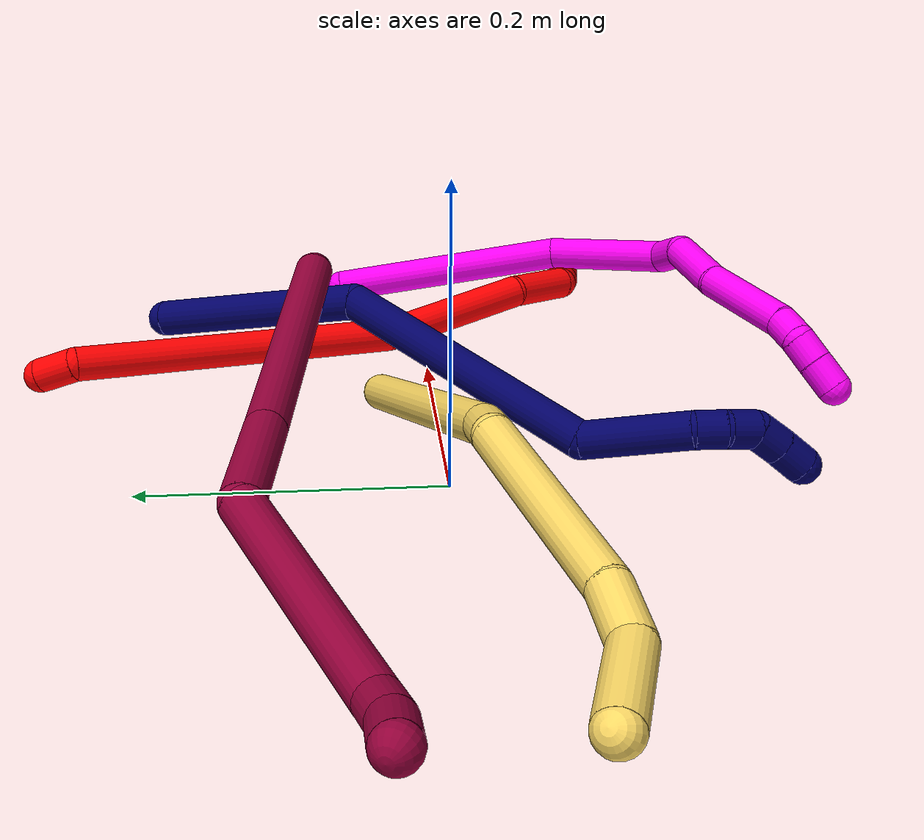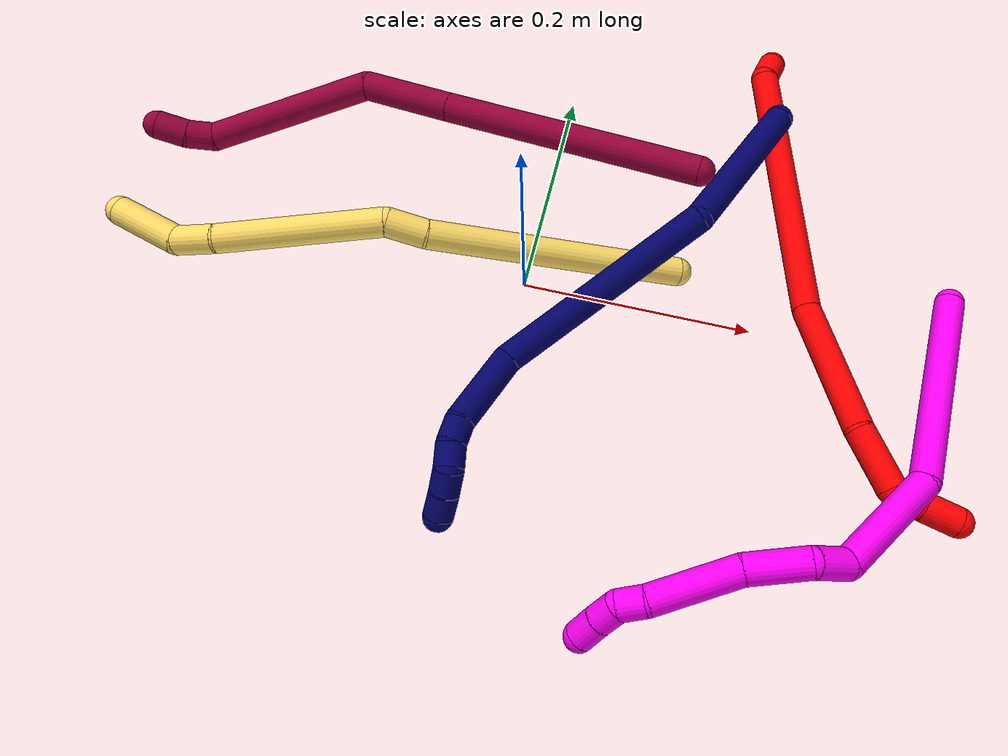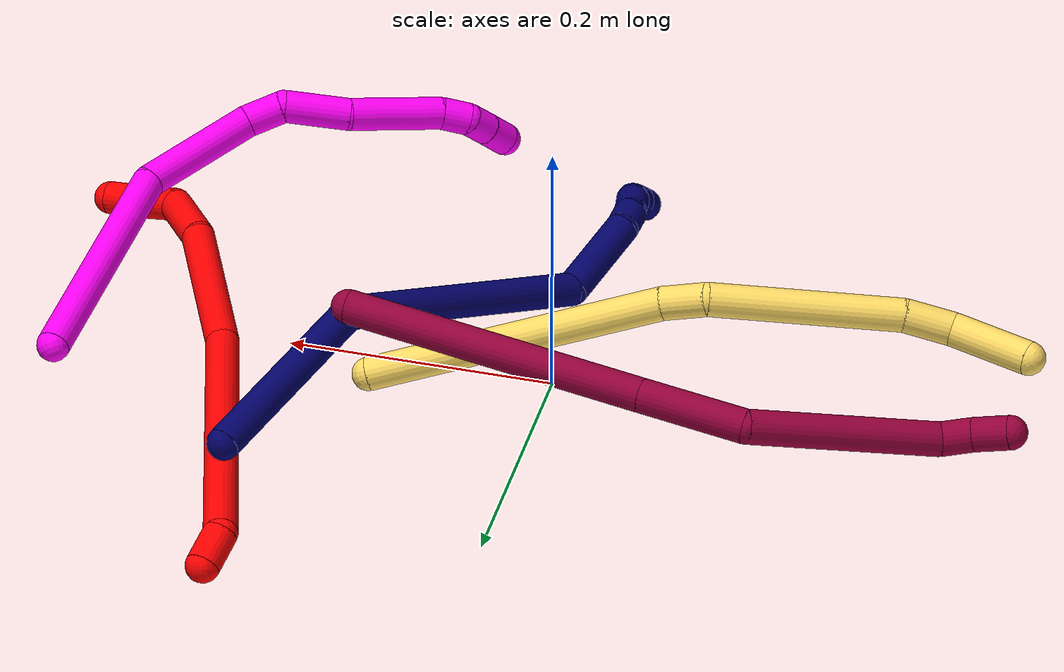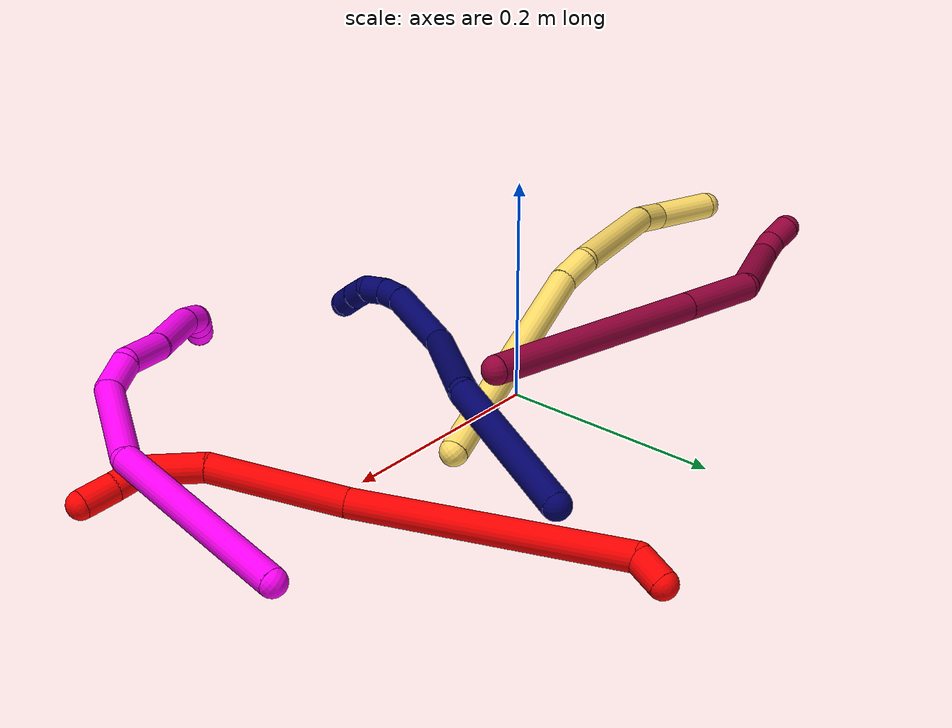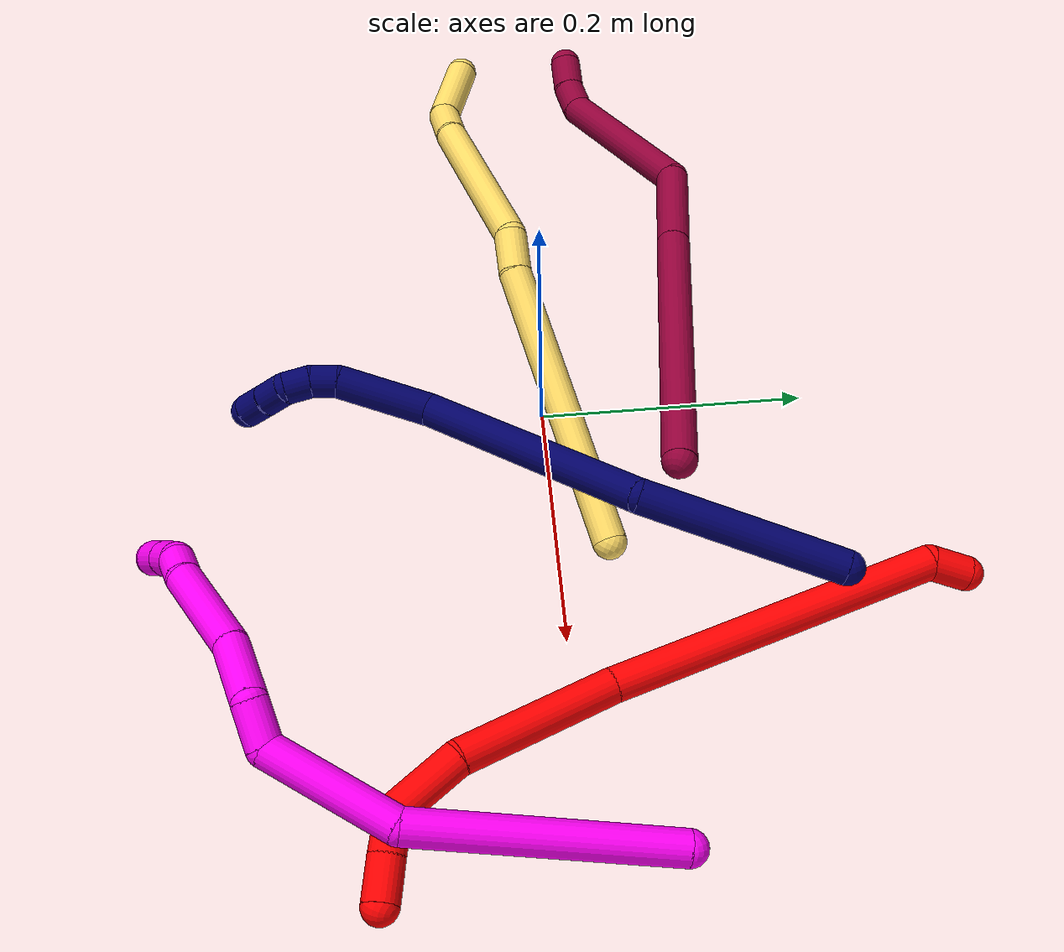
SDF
<sdf version="1.7">
 <world name="default">
  <model name="2">
   <static>0</static>
   <link name="2">
    <collision name="collision-cylinder-e_1_1_4">
     <pose>0.007827 -0.006777 0.009974 0.596817 0.575712 0.181643</pose>
     <geometry><cylinder><radius>0.0125</radius><length>0.028752</length></cylinder></geometry>
     <surface>
      <friction><ode><mu>1.16</mu><mu2>1.16</mu2><slip1>0</slip1><slip2>0</slip2></ode></friction>
      <contact><ode><kp>1e+06</kp><kd>1</kd><max_vel>0</max_vel><min_depth>0.001</min_depth></ode></contact>
     </surface>
    </collision>
    <visual name="visual-cylinder-e_1_1_4">
     <pose>0.007827 -0.006777 0.009974 0.596817 0.575712 0.181643</pose>
     <geometry><cylinder><radius>0.0125</radius><length>0.028752</length></cylinder></geometry>
     <material><ambient>1 0 0 1</ambient></material>
    </visual>
    <collision name="collision-cylinder-e_2_4_5">
     <pose>0.027157 -0.116205 0.082884 1.0208 0.095246 0.053354</pose>
     <geometry><cylinder><radius>0.0125</radius><length>0.241914</length></cylinder></geometry>
     <surface>
      <friction><ode><mu>1.16</mu><mu2>1.16</mu2><slip1>0</slip1><slip2>0</slip2></ode></friction>
      <contact><ode><kp>1e+06</kp><kd>1</kd><max_vel>0</max_vel><min_depth>0.001</min_depth></ode></contact>
     </surface>
    </collision>
    <visual name="visual-cylinder-e_2_4_5">
     <pose>0.027157 -0.116205 0.082884 1.0208 0.095246 0.053354</pose>
     <geometry><cylinder><radius>0.0125</radius><length>0.241914</length></cylinder></geometry>
     <material><ambient>1 0 0 1</ambient></material>
    </visual>
    <collision name="collision-cylinder-e_3_5_6">
     <pose>0.052136 -0.272971 0.165832 1.21657 0.229455 0.160147</pose>
     <geometry><cylinder><radius>0.0125</radius><length>0.118497</length></cylinder></geometry>
     <surface>
      <friction><ode><mu>1.16</mu><mu2>1.16</mu2><slip1>0</slip1><slip2>0</slip2></ode></friction>
      <contact><ode><kp>1e+06</kp><kd>1</kd><max_vel>0</max_vel><min_depth>0.001</min_depth></ode></contact>
     </surface>
    </collision>
    <visual name="visual-cylinder-e_3_5_6">
     <pose>0.052136 -0.272971 0.165832 1.21657 0.229455 0.160147</pose>
     <geometry><cylinder><radius>0.0125</radius><length>0.118497</length></cylinder></geometry>
     <material><ambient>1 0 0 1</ambient></material>
    </visual>
    <collision name="collision-cylinder-e_4_6_7">
     <pose>0.064855 -0.352868 0.191812 1.34338 -0.028588 -0.022728</pose>
     <geometry><cylinder><radius>0.0125</radius><length>0.052951</length></cylinder></geometry>
     <surface>
      <friction><ode><mu>1.16</mu><mu2>1.16</mu2><slip1>0</slip1><slip2>0</slip2></ode></friction>
      <contact><ode><kp>1e+06</kp><kd>1</kd><max_vel>0</max_vel><min_depth>0.001</min_depth></ode></contact>
     </surface>
    </collision>
    <visual name="visual-cylinder-e_4_6_7">
     <pose>0.064855 -0.352868 0.191812 1.34338 -0.028588 -0.022728</pose>
     <geometry><cylinder><radius>0.0125</radius><length>0.052951</length></cylinder></geometry>
     <material><ambient>1 0 0 1</ambient></material>
    </visual>
    <collision name="collision-cylinder-e_5_7_8">
     <pose>0.059578 -0.390214 0.19252 1.99757 -0.341877 -0.52393</pose>
     <geometry><cylinder><radius>0.0125</radius><length>0.026966</length></cylinder></geometry>
     <surface>
      <friction><ode><mu>1.16</mu><mu2>1.16</mu2><slip1>0</slip1><slip2>0</slip2></ode></friction>
      <contact><ode><kp>1e+06</kp><kd>1</kd><max_vel>0</max_vel><min_depth>0.001</min_depth></ode></contact>
     </surface>
    </collision>
    <visual name="visual-cylinder-e_5_7_8">
     <pose>0.059578 -0.390214 0.19252 1.99757 -0.341877 -0.52393</pose>
     <geometry><cylinder><radius>0.0125</radius><length>0.026966</length></cylinder></geometry>
     <material><ambient>1 0 0 1</ambient></material>
    </visual>
    <collision name="collision-cylinder-e_6_8_2">
     <pose>0.050822 -0.414843 0.180164 2.0685 -0.277488 -0.46123</pose>
     <geometry><cylinder><radius>0.0125</radius><length>0.03092</length></cylinder></geometry>
     <surface>
      <friction><ode><mu>1.16</mu><mu2>1.16</mu2><slip1>0</slip1><slip2>0</slip2></ode></friction>
      <contact><ode><kp>1e+06</kp><kd>1</kd><max_vel>0</max_vel><min_depth>0.001</min_depth></ode></contact>
     </surface>
    </collision>
    <visual name="visual-cylinder-e_6_8_2">
     <pose>0.050822 -0.414843 0.180164 2.0685 -0.277488 -0.46123</pose>
     <geometry><cylinder><radius>0.0125</radius><length>0.03092</length></cylinder></geometry>
     <material><ambient>1 0 0 1</ambient></material>
    </visual>
    <collision name="collision-sphere-2">
     <pose>0.046587 -0.427907 0.173065 0 -0 0</pose>
     <geometry><sphere><radius>0.0125</radius></sphere></geometry>
     <surface>
      <friction><ode><mu>1.16</mu><mu2>1.16</mu2><slip1>0</slip1><slip2>0</slip2></ode></friction>
      <contact><ode><kp>1e+06</kp><kd>1</kd><max_vel>0</max_vel><min_depth>0.001</min_depth></ode></contact>
     </surface>
    </collision>
    <visual name="visual-sphere-2">
     <pose>0.046587 -0.427907 0.173065 0 -0 0</pose>
     <geometry><sphere><radius>0.0125</radius></sphere></geometry>
     <material><ambient>1 0 0 1</ambient></material>
    </visual>
    <collision name="collision-sphere-4">
     <pose>0.015653 -0.013554 0.019948 0 -0 0</pose>
     <geometry><sphere><radius>0.0125</radius></sphere></geometry>
     <surface>
      <friction><ode><mu>1.16</mu><mu2>1.16</mu2><slip1>0</slip1><slip2>0</slip2></ode></friction>
      <contact><ode><kp>1e+06</kp><kd>1</kd><max_vel>0</max_vel><min_depth>0.001</min_depth></ode></contact>
     </surface>
    </collision>
    <visual name="visual-sphere-4">
     <pose>0.015653 -0.013554 0.019948 0 -0 0</pose>
     <geometry><sphere><radius>0.0125</radius></sphere></geometry>
     <material><ambient>1 0 0 1</ambient></material>
    </visual>
    <collision name="collision-sphere-1">
     <geometry><sphere><radius>0.0125</radius></sphere></geometry>
     <surface>
      <friction><ode><mu>1.16</mu><mu2>1.16</mu2><slip1>0</slip1><slip2>0</slip2></ode></friction>
      <contact><ode><kp>1e+06</kp><kd>1</kd><max_vel>0</max_vel><min_depth>0.001</min_depth></ode></contact>
     </surface>
    </collision>
    <visual name="visual-sphere-1">
     <geometry><sphere><radius>0.0125</radius></sphere></geometry>
     <material><ambient>1 0 0 1</ambient></material>
    </visual>
    <collision name="collision-sphere-8">
     <pose>0.055058 -0.401778 0.187262 0 -0 0</pose>
     <geometry><sphere><radius>0.0125</radius></sphere></geometry>
     <surface>
      <friction><ode><mu>1.16</mu><mu2>1.16</mu2><slip1>0</slip1><slip2>0</slip2></ode></friction>
      <contact><ode><kp>1e+06</kp><kd>1</kd><max_vel>0</max_vel><min_depth>0.001</min_depth></ode></contact>
     </surface>
    </collision>
    <visual name="visual-sphere-8">
     <pose>0.055058 -0.401778 0.187262 0 -0 0</pose>
     <geometry><sphere><radius>0.0125</radius></sphere></geometry>
     <material><ambient>1 0 0 1</ambient></material>
    </visual>
    <collision name="collision-sphere-5">
     <pose>0.03866 -0.218857 0.14582 0 -0 0</pose>
     <geometry><sphere><radius>0.0125</radius></sphere></geometry>
     <surface>
      <friction><ode><mu>1.16</mu><mu2>1.16</mu2><slip1>0</slip1><slip2>0</slip2></ode></friction>
      <contact><ode><kp>1e+06</kp><kd>1</kd><max_vel>0</max_vel><min_depth>0.001</min_depth></ode></contact>
     </surface>
    </collision>
    <visual name="visual-sphere-5">
     <pose>0.03866 -0.218857 0.14582 0 -0 0</pose>
     <geometry><sphere><radius>0.0125</radius></sphere></geometry>
     <material><ambient>1 0 0 1</ambient></material>
    </visual>
    <collision name="collision-sphere-6">
     <pose>0.065612 -0.327084 0.185845 0 -0 0</pose>
     <geometry><sphere><radius>0.0125</radius></sphere></geometry>
     <surface>
      <friction><ode><mu>1.16</mu><mu2>1.16</mu2><slip1>0</slip1><slip2>0</slip2></ode></friction>
      <contact><ode><kp>1e+06</kp><kd>1</kd><max_vel>0</max_vel><min_depth>0.001</min_depth></ode></contact>
     </surface>
    </collision>
    <visual name="visual-sphere-6">
     <pose>0.065612 -0.327084 0.185845 0 -0 0</pose>
     <geometry><sphere><radius>0.0125</radius></sphere></geometry>
     <material><ambient>1 0 0 1</ambient></material>
    </visual>
    <collision name="collision-sphere-7">
     <pose>0.064098 -0.378651 0.197778 0 -0 0</pose>
     <geometry><sphere><radius>0.0125</radius></sphere></geometry>
     <surface>
      <friction><ode><mu>1.16</mu><mu2>1.16</mu2><slip1>0</slip1><slip2>0</slip2></ode></friction>
      <contact><ode><kp>1e+06</kp><kd>1</kd><max_vel>0</max_vel><min_depth>0.001</min_depth></ode></contact>
     </surface>
    </collision>
    <visual name="visual-sphere-7">
     <pose>0.064098 -0.378651 0.197778 0 -0 0</pose>
     <geometry><sphere><radius>0.0125</radius></sphere></geometry>
     <material><ambient>1 0 0 1</ambient></material>
    </visual>
    <inertial>
     <pose>0.039169 -0.205374 0.121814 0 -0 0</pose>
     <mass>0.5</mass>
     <inertia>
      <ixx>0.001429</ixx>
      <ixy>0</ixy>
      <ixz>0</ixz>
      <iyy>0.000733</iyy>
      <iyz>0</iyz>
      <izz>0.00103</izz>
     </inertia>
    </inertial>
   </link>
   <pose>0.178473 0.284062 0.012043 3.12868 -1.31276 -2.27677</pose>
  </model>
  <model name="5">
   <static>0</static>
   <link name="5">
    <collision name="collision-cylinder-e_1_1_4">
     <pose>-0.07071 0.047085 -0.072844 -2.56777 -0.683952 1.75737</pose>
     <geometry><cylinder><radius>0.0125</radius><length>0.223814</length></cylinder></geometry>
     <surface>
      <friction><ode><mu>1.16</mu><mu2>1.16</mu2><slip1>0</slip1><slip2>0</slip2></ode></friction>
      <contact><ode><kp>1e+06</kp><kd>1</kd><max_vel>0</max_vel><min_depth>0.001</min_depth></ode></contact>
     </surface>
    </collision>
    <visual name="visual-cylinder-e_1_1_4">
     <pose>-0.07071 0.047085 -0.072844 -2.56777 -0.683952 1.75737</pose>
     <geometry><cylinder><radius>0.0125</radius><length>0.223814</length></cylinder></geometry>
     <material><ambient>1 0.858824 0.4 1</ambient></material>
    </visual>
    <collision name="collision-cylinder-e_2_4_5">
     <pose>-0.152039 0.098346 -0.158352 -2.82302 -0.672564 2.28002</pose>
     <geometry><cylinder><radius>0.0125</radius><length>0.034091</length></cylinder></geometry>
     <surface>
      <friction><ode><mu>1.16</mu><mu2>1.16</mu2><slip1>0</slip1><slip2>0</slip2></ode></friction>
      <contact><ode><kp>1e+06</kp><kd>1</kd><max_vel>0</max_vel><min_depth>0.001</min_depth></ode></contact>
     </surface>
    </collision>
    <visual name="visual-cylinder-e_2_4_5">
     <pose>-0.152039 0.098346 -0.158352 -2.82302 -0.672564 2.28002</pose>
     <geometry><cylinder><radius>0.0125</radius><length>0.034091</length></cylinder></geometry>
     <material><ambient>1 0.858824 0.4 1</ambient></material>
    </visual>
    <collision name="collision-cylinder-e_3_5_6">
     <pose>-0.226417 0.118649 -0.199435 -2.62545 -1.09719 2.32622</pose>
     <geometry><cylinder><radius>0.0125</radius><length>0.14329</length></cylinder></geometry>
     <surface>
      <friction><ode><mu>1.16</mu><mu2>1.16</mu2><slip1>0</slip1><slip2>0</slip2></ode></friction>
      <contact><ode><kp>1e+06</kp><kd>1</kd><max_vel>0</max_vel><min_depth>0.001</min_depth></ode></contact>
     </surface>
    </collision>
    <visual name="visual-cylinder-e_3_5_6">
     <pose>-0.226417 0.118649 -0.199435 -2.62545 -1.09719 2.32622</pose>
     <geometry><cylinder><radius>0.0125</radius><length>0.14329</length></cylinder></geometry>
     <material><ambient>1 0.858824 0.4 1</ambient></material>
    </visual>
    <collision name="collision-cylinder-e_4_6_7">
     <pose>-0.307223 0.135331 -0.234986 -3.06397 -1.17353 3.02491</pose>
     <geometry><cylinder><radius>0.0125</radius><length>0.036975</length></cylinder></geometry>
     <surface>
      <friction><ode><mu>1.16</mu><mu2>1.16</mu2><slip1>0</slip1><slip2>0</slip2></ode></friction>
      <contact><ode><kp>1e+06</kp><kd>1</kd><max_vel>0</max_vel><min_depth>0.001</min_depth></ode></contact>
     </surface>
    </collision>
    <visual name="visual-cylinder-e_4_6_7">
     <pose>-0.307223 0.135331 -0.234986 -3.06397 -1.17353 3.02491</pose>
     <geometry><cylinder><radius>0.0125</radius><length>0.036975</length></cylinder></geometry>
     <material><ambient>1 0.858824 0.4 1</ambient></material>
    </visual>
    <collision name="collision-cylinder-e_5_7_2">
     <pose>-0.345152 0.130052 -0.264156 2.88283 -0.741559 -2.49567</pose>
     <geometry><cylinder><radius>0.0125</radius><length>0.06183</length></cylinder></geometry>
     <surface>
      <friction><ode><mu>1.16</mu><mu2>1.16</mu2><slip1>0</slip1><slip2>0</slip2></ode></friction>
      <contact><ode><kp>1e+06</kp><kd>1</kd><max_vel>0</max_vel><min_depth>0.001</min_depth></ode></contact>
     </surface>
    </collision>
    <visual name="visual-cylinder-e_5_7_2">
     <pose>-0.345152 0.130052 -0.264156 2.88283 -0.741559 -2.49567</pose>
     <geometry><cylinder><radius>0.0125</radius><length>0.06183</length></cylinder></geometry>
     <material><ambient>1 0.858824 0.4 1</ambient></material>
    </visual>
    <collision name="collision-sphere-2">
     <pose>-0.366033 0.124219 -0.286194 0 -0 0</pose>
     <geometry><sphere><radius>0.0125</radius></sphere></geometry>
     <surface>
      <friction><ode><mu>1.16</mu><mu2>1.16</mu2><slip1>0</slip1><slip2>0</slip2></ode></friction>
      <contact><ode><kp>1e+06</kp><kd>1</kd><max_vel>0</max_vel><min_depth>0.001</min_depth></ode></contact>
     </surface>
    </collision>
    <visual name="visual-sphere-2">
     <pose>-0.366033 0.124219 -0.286194 0 -0 0</pose>
     <geometry><sphere><radius>0.0125</radius></sphere></geometry>
     <material><ambient>1 0.858824 0.4 1</ambient></material>
    </visual>
    <collision name="collision-sphere-7">
     <pose>-0.324271 0.135886 -0.242118 0 -0 0</pose>
     <geometry><sphere><radius>0.0125</radius></sphere></geometry>
     <surface>
      <friction><ode><mu>1.16</mu><mu2>1.16</mu2><slip1>0</slip1><slip2>0</slip2></ode></friction>
      <contact><ode><kp>1e+06</kp><kd>1</kd><max_vel>0</max_vel><min_depth>0.001</min_depth></ode></contact>
     </surface>
    </collision>
    <visual name="visual-sphere-7">
     <pose>-0.324271 0.135886 -0.242118 0 -0 0</pose>
     <geometry><sphere><radius>0.0125</radius></sphere></geometry>
     <material><ambient>1 0.858824 0.4 1</ambient></material>
    </visual>
    <collision name="collision-sphere-6">
     <pose>-0.290175 0.134776 -0.227855 0 -0 0</pose>
     <geometry><sphere><radius>0.0125</radius></sphere></geometry>
     <surface>
      <friction><ode><mu>1.16</mu><mu2>1.16</mu2><slip1>0</slip1><slip2>0</slip2></ode></friction>
      <contact><ode><kp>1e+06</kp><kd>1</kd><max_vel>0</max_vel><min_depth>0.001</min_depth></ode></contact>
     </surface>
    </collision>
    <visual name="visual-sphere-6">
     <pose>-0.290175 0.134776 -0.227855 0 -0 0</pose>
     <geometry><sphere><radius>0.0125</radius></sphere></geometry>
     <material><ambient>1 0.858824 0.4 1</ambient></material>
    </visual>
    <collision name="collision-sphere-5">
     <pose>-0.162658 0.102522 -0.171014 0 -0 0</pose>
     <geometry><sphere><radius>0.0125</radius></sphere></geometry>
     <surface>
      <friction><ode><mu>1.16</mu><mu2>1.16</mu2><slip1>0</slip1><slip2>0</slip2></ode></friction>
      <contact><ode><kp>1e+06</kp><kd>1</kd><max_vel>0</max_vel><min_depth>0.001</min_depth></ode></contact>
     </surface>
    </collision>
    <visual name="visual-sphere-5">
     <pose>-0.162658 0.102522 -0.171014 0 -0 0</pose>
     <geometry><sphere><radius>0.0125</radius></sphere></geometry>
     <material><ambient>1 0.858824 0.4 1</ambient></material>
    </visual>
    <collision name="collision-sphere-1">
     <geometry><sphere><radius>0.0125</radius></sphere></geometry>
     <surface>
      <friction><ode><mu>1.16</mu><mu2>1.16</mu2><slip1>0</slip1><slip2>0</slip2></ode></friction>
      <contact><ode><kp>1e+06</kp><kd>1</kd><max_vel>0</max_vel><min_depth>0.001</min_depth></ode></contact>
     </surface>
    </collision>
    <visual name="visual-sphere-1">
     <geometry><sphere><radius>0.0125</radius></sphere></geometry>
     <material><ambient>1 0.858824 0.4 1</ambient></material>
    </visual>
    <collision name="collision-sphere-4">
     <pose>-0.141419 0.09417 -0.145689 0 -0 0</pose>
     <geometry><sphere><radius>0.0125</radius></sphere></geometry>
     <surface>
      <friction><ode><mu>1.16</mu><mu2>1.16</mu2><slip1>0</slip1><slip2>0</slip2></ode></friction>
      <contact><ode><kp>1e+06</kp><kd>1</kd><max_vel>0</max_vel><min_depth>0.001</min_depth></ode></contact>
     </surface>
    </collision>
    <visual name="visual-sphere-4">
     <pose>-0.141419 0.09417 -0.145689 0 -0 0</pose>
     <geometry><sphere><radius>0.0125</radius></sphere></geometry>
     <material><ambient>1 0.858824 0.4 1</ambient></material>
    </visual>
    <inertial>
     <pose>-0.172305 0.087875 -0.150601 0 -0 0</pose>
     <mass>0.5</mass>
     <inertia>
      <ixx>0.000535</ixx>
      <ixy>0</ixy>
      <ixz>0</ixz>
      <iyy>0.001527</iyy>
      <iyz>0</iyz>
      <izz>0.000369</izz>
     </inertia>
    </inertial>
   </link>
   <pose>0.128832 0.037659 0.012069 2.38222 -0.575995 0.387065</pose>
  </model>
  <model name="7">
   <static>0</static>
   <link name="7">
    <collision name="collision-cylinder-e_1_1_4">
     <pose>-0.013863 -0.037908 0.062871 0.542579 -0.186638 -0.052052</pose>
     <geometry><cylinder><radius>0.0125</radius><length>0.149425</length></cylinder></geometry>
     <surface>
      <friction><ode><mu>1.16</mu><mu2>1.16</mu2><slip1>0</slip1><slip2>0</slip2></ode></friction>
      <contact><ode><kp>1e+06</kp><kd>1</kd><max_vel>0</max_vel><min_depth>0.001</min_depth></ode></contact>
     </surface>
    </collision>
    <visual name="visual-cylinder-e_1_1_4">
     <pose>-0.013863 -0.037908 0.062871 0.542579 -0.186638 -0.052052</pose>
     <geometry><cylinder><radius>0.0125</radius><length>0.149425</length></cylinder></geometry>
     <material><ambient>0.003922 0 0.403922 1</ambient></material>
    </visual>
    <collision name="collision-cylinder-e_2_4_5">
     <pose>0.008144 -0.137809 0.194016 0.737226 0.370965 0.144705</pose>
     <geometry><cylinder><radius>0.0125</radius><length>0.197901</length></cylinder></geometry>
     <surface>
      <friction><ode><mu>1.16</mu><mu2>1.16</mu2><slip1>0</slip1><slip2>0</slip2></ode></friction>
      <contact><ode><kp>1e+06</kp><kd>1</kd><max_vel>0</max_vel><min_depth>0.001</min_depth></ode></contact>
     </surface>
    </collision>
    <visual name="visual-cylinder-e_2_4_5">
     <pose>0.008144 -0.137809 0.194016 0.737226 0.370965 0.144705</pose>
     <geometry><cylinder><radius>0.0125</radius><length>0.197901</length></cylinder></geometry>
     <material><ambient>0.003922 0 0.403922 1</ambient></material>
    </visual>
    <collision name="collision-cylinder-e_3_5_6">
     <pose>0.035988 -0.216663 0.293133 0.500264 -0.224531 -0.05759</pose>
     <geometry><cylinder><radius>0.0125</radius><length>0.072113</length></cylinder></geometry>
     <surface>
      <friction><ode><mu>1.16</mu><mu2>1.16</mu2><slip1>0</slip1><slip2>0</slip2></ode></friction>
      <contact><ode><kp>1e+06</kp><kd>1</kd><max_vel>0</max_vel><min_depth>0.001</min_depth></ode></contact>
     </surface>
    </collision>
    <visual name="visual-cylinder-e_3_5_6">
     <pose>0.035988 -0.216663 0.293133 0.500264 -0.224531 -0.05759</pose>
     <geometry><cylinder><radius>0.0125</radius><length>0.072113</length></cylinder></geometry>
     <material><ambient>0.003922 0 0.403922 1</ambient></material>
    </visual>
    <collision name="collision-cylinder-e_4_6_7">
     <pose>0.026502 -0.235578 0.33374 0.207388 -0.145116 -0.015128</pose>
     <geometry><cylinder><radius>0.0125</radius><length>0.020164</length></cylinder></geometry>
     <surface>
      <friction><ode><mu>1.16</mu><mu2>1.16</mu2><slip1>0</slip1><slip2>0</slip2></ode></friction>
      <contact><ode><kp>1e+06</kp><kd>1</kd><max_vel>0</max_vel><min_depth>0.001</min_depth></ode></contact>
     </surface>
    </collision>
    <visual name="visual-cylinder-e_4_6_7">
     <pose>0.026502 -0.235578 0.33374 0.207388 -0.145116 -0.015128</pose>
     <geometry><cylinder><radius>0.0125</radius><length>0.020164</length></cylinder></geometry>
     <material><ambient>0.003922 0 0.403922 1</ambient></material>
    </visual>
    <collision name="collision-cylinder-e_5_7_8">
     <pose>0.024127 -0.236945 0.353504 -0.068557 -0.091225 0.00313</pose>
     <geometry><cylinder><radius>0.0125</radius><length>0.020135</length></cylinder></geometry>
     <surface>
      <friction><ode><mu>1.16</mu><mu2>1.16</mu2><slip1>0</slip1><slip2>0</slip2></ode></friction>
      <contact><ode><kp>1e+06</kp><kd>1</kd><max_vel>0</max_vel><min_depth>0.001</min_depth></ode></contact>
     </surface>
    </collision>
    <visual name="visual-cylinder-e_5_7_8">
     <pose>0.024127 -0.236945 0.353504 -0.068557 -0.091225 0.00313</pose>
     <geometry><cylinder><radius>0.0125</radius><length>0.020135</length></cylinder></geometry>
     <material><ambient>0.003922 0 0.403922 1</ambient></material>
    </visual>
    <collision name="collision-cylinder-e_6_8_9">
     <pose>0.027807 -0.235475 0.372416 -0.087735 0.47479 -0.021241</pose>
     <geometry><cylinder><radius>0.0125</radius><length>0.020112</length></cylinder></geometry>
     <surface>
      <friction><ode><mu>1.16</mu><mu2>1.16</mu2><slip1>0</slip1><slip2>0</slip2></ode></friction>
      <contact><ode><kp>1e+06</kp><kd>1</kd><max_vel>0</max_vel><min_depth>0.001</min_depth></ode></contact>
     </surface>
    </collision>
    <visual name="visual-cylinder-e_6_8_9">
     <pose>0.027807 -0.235475 0.372416 -0.087735 0.47479 -0.021241</pose>
     <geometry><cylinder><radius>0.0125</radius><length>0.020112</length></cylinder></geometry>
     <material><ambient>0.003922 0 0.403922 1</ambient></material>
    </visual>
    <collision name="collision-cylinder-e_7_9_2">
     <pose>0.037531 -0.234296 0.389988 -0.045583 0.533973 -0.01247</pose>
     <geometry><cylinder><radius>0.0125</radius><length>0.020149</length></cylinder></geometry>
     <surface>
      <friction><ode><mu>1.16</mu><mu2>1.16</mu2><slip1>0</slip1><slip2>0</slip2></ode></friction>
      <contact><ode><kp>1e+06</kp><kd>1</kd><max_vel>0</max_vel><min_depth>0.001</min_depth></ode></contact>
     </surface>
    </collision>
    <visual name="visual-cylinder-e_7_9_2">
     <pose>0.037531 -0.234296 0.389988 -0.045583 0.533973 -0.01247</pose>
     <geometry><cylinder><radius>0.0125</radius><length>0.020149</length></cylinder></geometry>
     <material><ambient>0.003922 0 0.403922 1</ambient></material>
    </visual>
    <collision name="collision-sphere-2">
     <pose>0.042659 -0.233901 0.398651 0 -0 0</pose>
     <geometry><sphere><radius>0.0125</radius></sphere></geometry>
     <surface>
      <friction><ode><mu>1.16</mu><mu2>1.16</mu2><slip1>0</slip1><slip2>0</slip2></ode></friction>
      <contact><ode><kp>1e+06</kp><kd>1</kd><max_vel>0</max_vel><min_depth>0.001</min_depth></ode></contact>
     </surface>
    </collision>
    <visual name="visual-sphere-2">
     <pose>0.042659 -0.233901 0.398651 0 -0 0</pose>
     <geometry><sphere><radius>0.0125</radius></sphere></geometry>
     <material><ambient>0.003922 0 0.403922 1</ambient></material>
    </visual>
    <collision name="collision-sphere-9">
     <pose>0.032404 -0.234691 0.381325 0 -0 0</pose>
     <geometry><sphere><radius>0.0125</radius></sphere></geometry>
     <surface>
      <friction><ode><mu>1.16</mu><mu2>1.16</mu2><slip1>0</slip1><slip2>0</slip2></ode></friction>
      <contact><ode><kp>1e+06</kp><kd>1</kd><max_vel>0</max_vel><min_depth>0.001</min_depth></ode></contact>
     </surface>
    </collision>
    <visual name="visual-sphere-9">
     <pose>0.032404 -0.234691 0.381325 0 -0 0</pose>
     <geometry><sphere><radius>0.0125</radius></sphere></geometry>
     <material><ambient>0.003922 0 0.403922 1</ambient></material>
    </visual>
    <collision name="collision-sphere-4">
     <pose>-0.027727 -0.075815 0.125742 0 -0 0</pose>
     <geometry><sphere><radius>0.0125</radius></sphere></geometry>
     <surface>
      <friction><ode><mu>1.16</mu><mu2>1.16</mu2><slip1>0</slip1><slip2>0</slip2></ode></friction>
      <contact><ode><kp>1e+06</kp><kd>1</kd><max_vel>0</max_vel><min_depth>0.001</min_depth></ode></contact>
     </surface>
    </collision>
    <visual name="visual-sphere-4">
     <pose>-0.027727 -0.075815 0.125742 0 -0 0</pose>
     <geometry><sphere><radius>0.0125</radius></sphere></geometry>
     <material><ambient>0.003922 0 0.403922 1</ambient></material>
    </visual>
    <collision name="collision-sphere-1">
     <geometry><sphere><radius>0.0125</radius></sphere></geometry>
     <surface>
      <friction><ode><mu>1.16</mu><mu2>1.16</mu2><slip1>0</slip1><slip2>0</slip2></ode></friction>
      <contact><ode><kp>1e+06</kp><kd>1</kd><max_vel>0</max_vel><min_depth>0.001</min_depth></ode></contact>
     </surface>
    </collision>
    <visual name="visual-sphere-1">
     <geometry><sphere><radius>0.0125</radius></sphere></geometry>
     <material><ambient>0.003922 0 0.403922 1</ambient></material>
    </visual>
    <collision name="collision-sphere-8">
     <pose>0.023209 -0.236258 0.363506 0 -0 0</pose>
     <geometry><sphere><radius>0.0125</radius></sphere></geometry>
     <surface>
      <friction><ode><mu>1.16</mu><mu2>1.16</mu2><slip1>0</slip1><slip2>0</slip2></ode></friction>
      <contact><ode><kp>1e+06</kp><kd>1</kd><max_vel>0</max_vel><min_depth>0.001</min_depth></ode></contact>
     </surface>
    </collision>
    <visual name="visual-sphere-8">
     <pose>0.023209 -0.236258 0.363506 0 -0 0</pose>
     <geometry><sphere><radius>0.0125</radius></sphere></geometry>
     <material><ambient>0.003922 0 0.403922 1</ambient></material>
    </visual>
    <collision name="collision-sphere-5">
     <pose>0.044016 -0.199802 0.262289 0 -0 0</pose>
     <geometry><sphere><radius>0.0125</radius></sphere></geometry>
     <surface>
      <friction><ode><mu>1.16</mu><mu2>1.16</mu2><slip1>0</slip1><slip2>0</slip2></ode></friction>
      <contact><ode><kp>1e+06</kp><kd>1</kd><max_vel>0</max_vel><min_depth>0.001</min_depth></ode></contact>
     </surface>
    </collision>
    <visual name="visual-sphere-5">
     <pose>0.044016 -0.199802 0.262289 0 -0 0</pose>
     <geometry><sphere><radius>0.0125</radius></sphere></geometry>
     <material><ambient>0.003922 0 0.403922 1</ambient></material>
    </visual>
    <collision name="collision-sphere-6">
     <pose>0.02796 -0.233524 0.323977 0 -0 0</pose>
     <geometry><sphere><radius>0.0125</radius></sphere></geometry>
     <surface>
      <friction><ode><mu>1.16</mu><mu2>1.16</mu2><slip1>0</slip1><slip2>0</slip2></ode></friction>
      <contact><ode><kp>1e+06</kp><kd>1</kd><max_vel>0</max_vel><min_depth>0.001</min_depth></ode></contact>
     </surface>
    </collision>
    <visual name="visual-sphere-6">
     <pose>0.02796 -0.233524 0.323977 0 -0 0</pose>
     <geometry><sphere><radius>0.0125</radius></sphere></geometry>
     <material><ambient>0.003922 0 0.403922 1</ambient></material>
    </visual>
    <collision name="collision-sphere-7">
     <pose>0.025044 -0.237632 0.343502 0 -0 0</pose>
     <geometry><sphere><radius>0.0125</radius></sphere></geometry>
     <surface>
      <friction><ode><mu>1.16</mu><mu2>1.16</mu2><slip1>0</slip1><slip2>0</slip2></ode></friction>
      <contact><ode><kp>1e+06</kp><kd>1</kd><max_vel>0</max_vel><min_depth>0.001</min_depth></ode></contact>
     </surface>
    </collision>
    <visual name="visual-sphere-7">
     <pose>0.025044 -0.237632 0.343502 0 -0 0</pose>
     <geometry><sphere><radius>0.0125</radius></sphere></geometry>
     <material><ambient>0.003922 0 0.403922 1</ambient></material>
    </visual>
    <inertial>
     <pose>0.008942 -0.135078 0.196249 0 -0 0</pose>
     <mass>0.5</mass>
     <inertia>
      <ixx>0.000995</ixx>
      <ixy>0</ixy>
      <ixz>0</ixz>
      <iyy>0.000835</iyy>
      <iyz>0</iyz>
      <izz>0.000423</izz>
     </inertia>
    </inertial>
   </link>
   <pose>0.190204 0.192101 0.049632 -2.07596 1.19607 2.73855</pose>
  </model>
  <model name="8">
   <static>0</static>
   <link name="8">
    <collision name="collision-cylinder-e_1_1_4">
     <pose>-0.015217 0.028767 0.107464 -0.261555 -0.135942 0.017907</pose>
     <geometry><cylinder><radius>0.0125</radius><length>0.224568</length></cylinder></geometry>
     <surface>
      <friction><ode><mu>1.16</mu><mu2>1.16</mu2><slip1>0</slip1><slip2>0</slip2></ode></friction>
      <contact><ode><kp>1e+06</kp><kd>1</kd><max_vel>0</max_vel><min_depth>0.001</min_depth></ode></contact>
     </surface>
    </collision>
    <visual name="visual-cylinder-e_1_1_4">
     <pose>-0.015217 0.028767 0.107464 -0.261555 -0.135942 0.017907</pose>
     <geometry><cylinder><radius>0.0125</radius><length>0.224568</length></cylinder></geometry>
     <material><ambient>0.584314 0 0.227451 1</ambient></material>
    </visual>
    <collision name="collision-cylinder-e_2_4_5">
     <pose>-0.035942 0.067224 0.252728 -0.250958 -0.140232 0.017718</pose>
     <geometry><cylinder><radius>0.0125</radius><length>0.078817</length></cylinder></geometry>
     <surface>
      <friction><ode><mu>1.16</mu><mu2>1.16</mu2><slip1>0</slip1><slip2>0</slip2></ode></friction>
      <contact><ode><kp>1e+06</kp><kd>1</kd><max_vel>0</max_vel><min_depth>0.001</min_depth></ode></contact>
     </surface>
    </collision>
    <visual name="visual-cylinder-e_2_4_5">
     <pose>-0.035942 0.067224 0.252728 -0.250958 -0.140232 0.017718</pose>
     <geometry><cylinder><radius>0.0125</radius><length>0.078817</length></cylinder></geometry>
     <material><ambient>0.584314 0 0.227451 1</ambient></material>
    </visual>
    <collision name="collision-cylinder-e_3_5_6">
     <pose>-0.06467 0.128259 0.336704 -0.838335 -0.324366 0.145552</pose>
     <geometry><cylinder><radius>0.0125</radius><length>0.145707</length></cylinder></geometry>
     <surface>
      <friction><ode><mu>1.16</mu><mu2>1.16</mu2><slip1>0</slip1><slip2>0</slip2></ode></friction>
      <contact><ode><kp>1e+06</kp><kd>1</kd><max_vel>0</max_vel><min_depth>0.001</min_depth></ode></contact>
     </surface>
    </collision>
    <visual name="visual-cylinder-e_3_5_6">
     <pose>-0.06467 0.128259 0.336704 -0.838335 -0.324366 0.145552</pose>
     <geometry><cylinder><radius>0.0125</radius><length>0.145707</length></cylinder></geometry>
     <material><ambient>0.584314 0 0.227451 1</ambient></material>
    </visual>
    <collision name="collision-cylinder-e_4_6_7">
     <pose>-0.094241 0.183522 0.392158 -0.399777 -0.562759 0.116986</pose>
     <geometry><cylinder><radius>0.0125</radius><length>0.023813</length></cylinder></geometry>
     <surface>
      <friction><ode><mu>1.16</mu><mu2>1.16</mu2><slip1>0</slip1><slip2>0</slip2></ode></friction>
      <contact><ode><kp>1e+06</kp><kd>1</kd><max_vel>0</max_vel><min_depth>0.001</min_depth></ode></contact>
     </surface>
    </collision>
    <visual name="visual-cylinder-e_4_6_7">
     <pose>-0.094241 0.183522 0.392158 -0.399777 -0.562759 0.116986</pose>
     <geometry><cylinder><radius>0.0125</radius><length>0.023813</length></cylinder></geometry>
     <material><ambient>0.584314 0 0.227451 1</ambient></material>
    </visual>
    <collision name="collision-cylinder-e_5_7_2">
     <pose>-0.106761 0.189432 0.413331 -0.165783 -0.472651 0.040011</pose>
     <geometry><cylinder><radius>0.0125</radius><length>0.027095</length></cylinder></geometry>
     <surface>
      <friction><ode><mu>1.16</mu><mu2>1.16</mu2><slip1>0</slip1><slip2>0</slip2></ode></friction>
      <contact><ode><kp>1e+06</kp><kd>1</kd><max_vel>0</max_vel><min_depth>0.001</min_depth></ode></contact>
     </surface>
    </collision>
    <visual name="visual-cylinder-e_5_7_2">
     <pose>-0.106761 0.189432 0.413331 -0.165783 -0.472651 0.040011</pose>
     <geometry><cylinder><radius>0.0125</radius><length>0.027095</length></cylinder></geometry>
     <material><ambient>0.584314 0 0.227451 1</ambient></material>
    </visual>
    <collision name="collision-sphere-2">
     <pose>-0.112928 0.191423 0.425227 0 -0 0</pose>
     <geometry><sphere><radius>0.0125</radius></sphere></geometry>
     <surface>
      <friction><ode><mu>1.16</mu><mu2>1.16</mu2><slip1>0</slip1><slip2>0</slip2></ode></friction>
      <contact><ode><kp>1e+06</kp><kd>1</kd><max_vel>0</max_vel><min_depth>0.001</min_depth></ode></contact>
     </surface>
    </collision>
    <visual name="visual-sphere-2">
     <pose>-0.112928 0.191423 0.425227 0 -0 0</pose>
     <geometry><sphere><radius>0.0125</radius></sphere></geometry>
     <material><ambient>0.584314 0 0.227451 1</ambient></material>
    </visual>
    <collision name="collision-sphere-7">
     <pose>-0.100594 0.187442 0.401434 0 -0 0</pose>
     <geometry><sphere><radius>0.0125</radius></sphere></geometry>
     <surface>
      <friction><ode><mu>1.16</mu><mu2>1.16</mu2><slip1>0</slip1><slip2>0</slip2></ode></friction>
      <contact><ode><kp>1e+06</kp><kd>1</kd><max_vel>0</max_vel><min_depth>0.001</min_depth></ode></contact>
     </surface>
    </collision>
    <visual name="visual-sphere-7">
     <pose>-0.100594 0.187442 0.401434 0 -0 0</pose>
     <geometry><sphere><radius>0.0125</radius></sphere></geometry>
     <material><ambient>0.584314 0 0.227451 1</ambient></material>
    </visual>
    <collision name="collision-sphere-6">
     <pose>-0.087889 0.179603 0.382881 0 -0 0</pose>
     <geometry><sphere><radius>0.0125</radius></sphere></geometry>
     <surface>
      <friction><ode><mu>1.16</mu><mu2>1.16</mu2><slip1>0</slip1><slip2>0</slip2></ode></friction>
      <contact><ode><kp>1e+06</kp><kd>1</kd><max_vel>0</max_vel><min_depth>0.001</min_depth></ode></contact>
     </surface>
    </collision>
    <visual name="visual-sphere-6">
     <pose>-0.087889 0.179603 0.382881 0 -0 0</pose>
     <geometry><sphere><radius>0.0125</radius></sphere></geometry>
     <material><ambient>0.584314 0 0.227451 1</ambient></material>
    </visual>
    <collision name="collision-sphere-5">
     <pose>-0.041451 0.076915 0.290528 0 -0 0</pose>
     <geometry><sphere><radius>0.0125</radius></sphere></geometry>
     <surface>
      <friction><ode><mu>1.16</mu><mu2>1.16</mu2><slip1>0</slip1><slip2>0</slip2></ode></friction>
      <contact><ode><kp>1e+06</kp><kd>1</kd><max_vel>0</max_vel><min_depth>0.001</min_depth></ode></contact>
     </surface>
    </collision>
    <visual name="visual-sphere-5">
     <pose>-0.041451 0.076915 0.290528 0 -0 0</pose>
     <geometry><sphere><radius>0.0125</radius></sphere></geometry>
     <material><ambient>0.584314 0 0.227451 1</ambient></material>
    </visual>
    <collision name="collision-sphere-1">
     <geometry><sphere><radius>0.0125</radius></sphere></geometry>
     <surface>
      <friction><ode><mu>1.16</mu><mu2>1.16</mu2><slip1>0</slip1><slip2>0</slip2></ode></friction>
      <contact><ode><kp>1e+06</kp><kd>1</kd><max_vel>0</max_vel><min_depth>0.001</min_depth></ode></contact>
     </surface>
    </collision>
    <visual name="visual-sphere-1">
     <geometry><sphere><radius>0.0125</radius></sphere></geometry>
     <material><ambient>0.584314 0 0.227451 1</ambient></material>
    </visual>
    <collision name="collision-sphere-4">
     <pose>-0.030434 0.057534 0.214929 0 -0 0</pose>
     <geometry><sphere><radius>0.0125</radius></sphere></geometry>
     <surface>
      <friction><ode><mu>1.16</mu><mu2>1.16</mu2><slip1>0</slip1><slip2>0</slip2></ode></friction>
      <contact><ode><kp>1e+06</kp><kd>1</kd><max_vel>0</max_vel><min_depth>0.001</min_depth></ode></contact>
     </surface>
    </collision>
    <visual name="visual-sphere-4">
     <pose>-0.030434 0.057534 0.214929 0 -0 0</pose>
     <geometry><sphere><radius>0.0125</radius></sphere></geometry>
     <material><ambient>0.584314 0 0.227451 1</ambient></material>
    </visual>
    <inertial>
     <pose>-0.04162 0.079899 0.2273 0 -0 0</pose>
     <mass>0.5</mass>
     <inertia>
      <ixx>0.001284</ixx>
      <ixy>0</ixy>
      <ixz>0</ixz>
      <iyy>0.00122</iyy>
      <iyz>0</iyz>
      <izz>-0.000187</izz>
     </inertia>
    </inertial>
   </link>
   <pose>0.129287 0.082646 0.103493 -1.59824 0.868856 1.13779</pose>
  </model>
  <model name="10">
   <static>0</static>
   <link name="10">
    <collision name="collision-cylinder-e_1_1_4">
     <pose>-0.052221 0.047986 -0.05733 -2.44469 -0.609715 1.42764</pose>
     <geometry><cylinder><radius>0.0125</radius><length>0.182389</length></cylinder></geometry>
     <surface>
      <friction><ode><mu>1.16</mu><mu2>1.16</mu2><slip1>0</slip1><slip2>0</slip2></ode></friction>
      <contact><ode><kp>1e+06</kp><kd>1</kd><max_vel>0</max_vel><min_depth>0.001</min_depth></ode></contact>
     </surface>
    </collision>
    <visual name="visual-cylinder-e_1_1_4">
     <pose>-0.052221 0.047986 -0.05733 -2.44469 -0.609715 1.42764</pose>
     <geometry><cylinder><radius>0.0125</radius><length>0.182389</length></cylinder></geometry>
     <material><ambient>1 0 0.964706 1</ambient></material>
    </visual>
    <collision name="collision-cylinder-e_2_4_5">
     <pose>-0.147365 0.114172 -0.128656 -2.22635 -1.07962 1.76563</pose>
     <geometry><cylinder><radius>0.0125</radius><length>0.097357</length></cylinder></geometry>
     <surface>
      <friction><ode><mu>1.16</mu><mu2>1.16</mu2><slip1>0</slip1><slip2>0</slip2></ode></friction>
      <contact><ode><kp>1e+06</kp><kd>1</kd><max_vel>0</max_vel><min_depth>0.001</min_depth></ode></contact>
     </surface>
    </collision>
    <visual name="visual-cylinder-e_2_4_5">
     <pose>-0.147365 0.114172 -0.128656 -2.22635 -1.07962 1.76563</pose>
     <geometry><cylinder><radius>0.0125</radius><length>0.097357</length></cylinder></geometry>
     <material><ambient>1 0 0.964706 1</ambient></material>
    </visual>
    <collision name="collision-cylinder-e_3_5_6">
     <pose>-0.205462 0.128316 -0.142703 1.58312 -1.3095 -1.32143</pose>
     <geometry><cylinder><radius>0.0125</radius><length>0.031412</length></cylinder></geometry>
     <surface>
      <friction><ode><mu>1.16</mu><mu2>1.16</mu2><slip1>0</slip1><slip2>0</slip2></ode></friction>
      <contact><ode><kp>1e+06</kp><kd>1</kd><max_vel>0</max_vel><min_depth>0.001</min_depth></ode></contact>
     </surface>
    </collision>
    <visual name="visual-cylinder-e_3_5_6">
     <pose>-0.205462 0.128316 -0.142703 1.58312 -1.3095 -1.32143</pose>
     <geometry><cylinder><radius>0.0125</radius><length>0.031412</length></cylinder></geometry>
     <material><ambient>1 0 0.964706 1</ambient></material>
    </visual>
    <collision name="collision-cylinder-e_4_6_7">
     <pose>-0.24321 0.128194 -0.132491 -0.366247 -1.11776 0.230614</pose>
     <geometry><cylinder><radius>0.0125</radius><length>0.050218</length></cylinder></geometry>
     <surface>
      <friction><ode><mu>1.16</mu><mu2>1.16</mu2><slip1>0</slip1><slip2>0</slip2></ode></friction>
      <contact><ode><kp>1e+06</kp><kd>1</kd><max_vel>0</max_vel><min_depth>0.001</min_depth></ode></contact>
     </surface>
    </collision>
    <visual name="visual-cylinder-e_4_6_7">
     <pose>-0.24321 0.128194 -0.132491 -0.366247 -1.11776 0.230614</pose>
     <geometry><cylinder><radius>0.0125</radius><length>0.050218</length></cylinder></geometry>
     <material><ambient>1 0 0.964706 1</ambient></material>
    </visual>
    <collision name="collision-cylinder-e_5_7_8">
     <pose>-0.299731 0.142789 -0.113489 -0.883946 -1.18505 0.616797</pose>
     <geometry><cylinder><radius>0.0125</radius><length>0.073274</length></cylinder></geometry>
     <surface>
      <friction><ode><mu>1.16</mu><mu2>1.16</mu2><slip1>0</slip1><slip2>0</slip2></ode></friction>
      <contact><ode><kp>1e+06</kp><kd>1</kd><max_vel>0</max_vel><min_depth>0.001</min_depth></ode></contact>
     </surface>
    </collision>
    <visual name="visual-cylinder-e_5_7_8">
     <pose>-0.299731 0.142789 -0.113489 -0.883946 -1.18505 0.616797</pose>
     <geometry><cylinder><radius>0.0125</radius><length>0.073274</length></cylinder></geometry>
     <material><ambient>1 0 0.964706 1</ambient></material>
    </visual>
    <collision name="collision-cylinder-e_6_8_9">
     <pose>-0.343018 0.156437 -0.099715 -0.535905 -1.01101 0.301612</pose>
     <geometry><cylinder><radius>0.0125</radius><length>0.022049</length></cylinder></geometry>
     <surface>
      <friction><ode><mu>1.16</mu><mu2>1.16</mu2><slip1>0</slip1><slip2>0</slip2></ode></friction>
      <contact><ode><kp>1e+06</kp><kd>1</kd><max_vel>0</max_vel><min_depth>0.001</min_depth></ode></contact>
     </surface>
    </collision>
    <visual name="visual-cylinder-e_6_8_9">
     <pose>-0.343018 0.156437 -0.099715 -0.535905 -1.01101 0.301612</pose>
     <geometry><cylinder><radius>0.0125</radius><length>0.022049</length></cylinder></geometry>
     <material><ambient>1 0 0.964706 1</ambient></material>
    </visual>
    <collision name="collision-cylinder-e_7_9_10">
     <pose>-0.35805 0.166915 -0.090439 -1.05536 -0.58416 0.346953</pose>
     <geometry><cylinder><radius>0.0125</radius><length>0.020635</length></cylinder></geometry>
     <surface>
      <friction><ode><mu>1.16</mu><mu2>1.16</mu2><slip1>0</slip1><slip2>0</slip2></ode></friction>
      <contact><ode><kp>1e+06</kp><kd>1</kd><max_vel>0</max_vel><min_depth>0.001</min_depth></ode></contact>
     </surface>
    </collision>
    <visual name="visual-cylinder-e_7_9_10">
     <pose>-0.35805 0.166915 -0.090439 -1.05536 -0.58416 0.346953</pose>
     <geometry><cylinder><radius>0.0125</radius><length>0.020635</length></cylinder></geometry>
     <material><ambient>1 0 0.964706 1</ambient></material>
    </visual>
    <collision name="collision-cylinder-e_8_10_2">
     <pose>-0.36966 0.182979 -0.081741 -1.09154 -0.549582 0.339138</pose>
     <geometry><cylinder><radius>0.0125</radius><length>0.022667</length></cylinder></geometry>
     <surface>
      <friction><ode><mu>1.16</mu><mu2>1.16</mu2><slip1>0</slip1><slip2>0</slip2></ode></friction>
      <contact><ode><kp>1e+06</kp><kd>1</kd><max_vel>0</max_vel><min_depth>0.001</min_depth></ode></contact>
     </surface>
    </collision>
    <visual name="visual-cylinder-e_8_10_2">
     <pose>-0.36966 0.182979 -0.081741 -1.09154 -0.549582 0.339138</pose>
     <geometry><cylinder><radius>0.0125</radius><length>0.022667</length></cylinder></geometry>
     <material><ambient>1 0 0.964706 1</ambient></material>
    </visual>
    <collision name="collision-sphere-2">
     <pose>-0.37558 0.191555 -0.077284 0 -0 0</pose>
     <geometry><sphere><radius>0.0125</radius></sphere></geometry>
     <surface>
      <friction><ode><mu>1.16</mu><mu2>1.16</mu2><slip1>0</slip1><slip2>0</slip2></ode></friction>
      <contact><ode><kp>1e+06</kp><kd>1</kd><max_vel>0</max_vel><min_depth>0.001</min_depth></ode></contact>
     </surface>
    </collision>
    <visual name="visual-sphere-2">
     <pose>-0.37558 0.191555 -0.077284 0 -0 0</pose>
     <geometry><sphere><radius>0.0125</radius></sphere></geometry>
     <material><ambient>1 0 0.964706 1</ambient></material>
    </visual>
    <collision name="collision-sphere-10">
     <pose>-0.36374 0.174403 -0.086197 0 -0 0</pose>
     <geometry><sphere><radius>0.0125</radius></sphere></geometry>
     <surface>
      <friction><ode><mu>1.16</mu><mu2>1.16</mu2><slip1>0</slip1><slip2>0</slip2></ode></friction>
      <contact><ode><kp>1e+06</kp><kd>1</kd><max_vel>0</max_vel><min_depth>0.001</min_depth></ode></contact>
     </surface>
    </collision>
    <visual name="visual-sphere-10">
     <pose>-0.36374 0.174403 -0.086197 0 -0 0</pose>
     <geometry><sphere><radius>0.0125</radius></sphere></geometry>
     <material><ambient>1 0 0.964706 1</ambient></material>
    </visual>
    <collision name="collision-sphere-9">
     <pose>-0.35236 0.159426 -0.094682 0 -0 0</pose>
     <geometry><sphere><radius>0.0125</radius></sphere></geometry>
     <surface>
      <friction><ode><mu>1.16</mu><mu2>1.16</mu2><slip1>0</slip1><slip2>0</slip2></ode></friction>
      <contact><ode><kp>1e+06</kp><kd>1</kd><max_vel>0</max_vel><min_depth>0.001</min_depth></ode></contact>
     </surface>
    </collision>
    <visual name="visual-sphere-9">
     <pose>-0.35236 0.159426 -0.094682 0 -0 0</pose>
     <geometry><sphere><radius>0.0125</radius></sphere></geometry>
     <material><ambient>1 0 0.964706 1</ambient></material>
    </visual>
    <collision name="collision-sphere-4">
     <pose>-0.104442 0.095972 -0.11466 0 -0 0</pose>
     <geometry><sphere><radius>0.0125</radius></sphere></geometry>
     <surface>
      <friction><ode><mu>1.16</mu><mu2>1.16</mu2><slip1>0</slip1><slip2>0</slip2></ode></friction>
      <contact><ode><kp>1e+06</kp><kd>1</kd><max_vel>0</max_vel><min_depth>0.001</min_depth></ode></contact>
     </surface>
    </collision>
    <visual name="visual-sphere-4">
     <pose>-0.104442 0.095972 -0.11466 0 -0 0</pose>
     <geometry><sphere><radius>0.0125</radius></sphere></geometry>
     <material><ambient>1 0 0.964706 1</ambient></material>
    </visual>
    <collision name="collision-sphere-1">
     <geometry><sphere><radius>0.0125</radius></sphere></geometry>
     <surface>
      <friction><ode><mu>1.16</mu><mu2>1.16</mu2><slip1>0</slip1><slip2>0</slip2></ode></friction>
      <contact><ode><kp>1e+06</kp><kd>1</kd><max_vel>0</max_vel><min_depth>0.001</min_depth></ode></contact>
     </surface>
    </collision>
    <visual name="visual-sphere-1">
     <geometry><sphere><radius>0.0125</radius></sphere></geometry>
     <material><ambient>1 0 0.964706 1</ambient></material>
    </visual>
    <collision name="collision-sphere-8">
     <pose>-0.333676 0.153448 -0.104748 0 -0 0</pose>
     <geometry><sphere><radius>0.0125</radius></sphere></geometry>
     <surface>
      <friction><ode><mu>1.16</mu><mu2>1.16</mu2><slip1>0</slip1><slip2>0</slip2></ode></friction>
      <contact><ode><kp>1e+06</kp><kd>1</kd><max_vel>0</max_vel><min_depth>0.001</min_depth></ode></contact>
     </surface>
    </collision>
    <visual name="visual-sphere-8">
     <pose>-0.333676 0.153448 -0.104748 0 -0 0</pose>
     <geometry><sphere><radius>0.0125</radius></sphere></geometry>
     <material><ambient>1 0 0.964706 1</ambient></material>
    </visual>
    <collision name="collision-sphere-5">
     <pose>-0.190289 0.132373 -0.142653 0 -0 0</pose>
     <geometry><sphere><radius>0.0125</radius></sphere></geometry>
     <surface>
      <friction><ode><mu>1.16</mu><mu2>1.16</mu2><slip1>0</slip1><slip2>0</slip2></ode></friction>
      <contact><ode><kp>1e+06</kp><kd>1</kd><max_vel>0</max_vel><min_depth>0.001</min_depth></ode></contact>
     </surface>
    </collision>
    <visual name="visual-sphere-5">
     <pose>-0.190289 0.132373 -0.142653 0 -0 0</pose>
     <geometry><sphere><radius>0.0125</radius></sphere></geometry>
     <material><ambient>1 0 0.964706 1</ambient></material>
    </visual>
    <collision name="collision-sphere-6">
     <pose>-0.220635 0.124259 -0.142753 0 -0 0</pose>
     <geometry><sphere><radius>0.0125</radius></sphere></geometry>
     <surface>
      <friction><ode><mu>1.16</mu><mu2>1.16</mu2><slip1>0</slip1><slip2>0</slip2></ode></friction>
      <contact><ode><kp>1e+06</kp><kd>1</kd><max_vel>0</max_vel><min_depth>0.001</min_depth></ode></contact>
     </surface>
    </collision>
    <visual name="visual-sphere-6">
     <pose>-0.220635 0.124259 -0.142753 0 -0 0</pose>
     <geometry><sphere><radius>0.0125</radius></sphere></geometry>
     <material><ambient>1 0 0.964706 1</ambient></material>
    </visual>
    <collision name="collision-sphere-7">
     <pose>-0.265786 0.13213 -0.12223 0 -0 0</pose>
     <geometry><sphere><radius>0.0125</radius></sphere></geometry>
     <surface>
      <friction><ode><mu>1.16</mu><mu2>1.16</mu2><slip1>0</slip1><slip2>0</slip2></ode></friction>
      <contact><ode><kp>1e+06</kp><kd>1</kd><max_vel>0</max_vel><min_depth>0.001</min_depth></ode></contact>
     </surface>
    </collision>
    <visual name="visual-sphere-7">
     <pose>-0.265786 0.13213 -0.12223 0 -0 0</pose>
     <geometry><sphere><radius>0.0125</radius></sphere></geometry>
     <material><ambient>1 0 0.964706 1</ambient></material>
    </visual>
    <inertial>
     <pose>-0.175664 0.103679 -0.096703 0 -0 0</pose>
     <mass>0.5</mass>
     <inertia>
      <ixx>0.000506</ixx>
      <ixy>0</ixy>
      <ixz>0</ixz>
      <iyy>0.000726</iyy>
      <iyz>0</iyz>
      <izz>9.6e-05</izz>
     </inertia>
    </inertial>
   </link>
   <pose>0.36339 0.06123 0.011862 -2.31325 0.232047 0.493442</pose>
  </model>
 </world>
</sdf>
